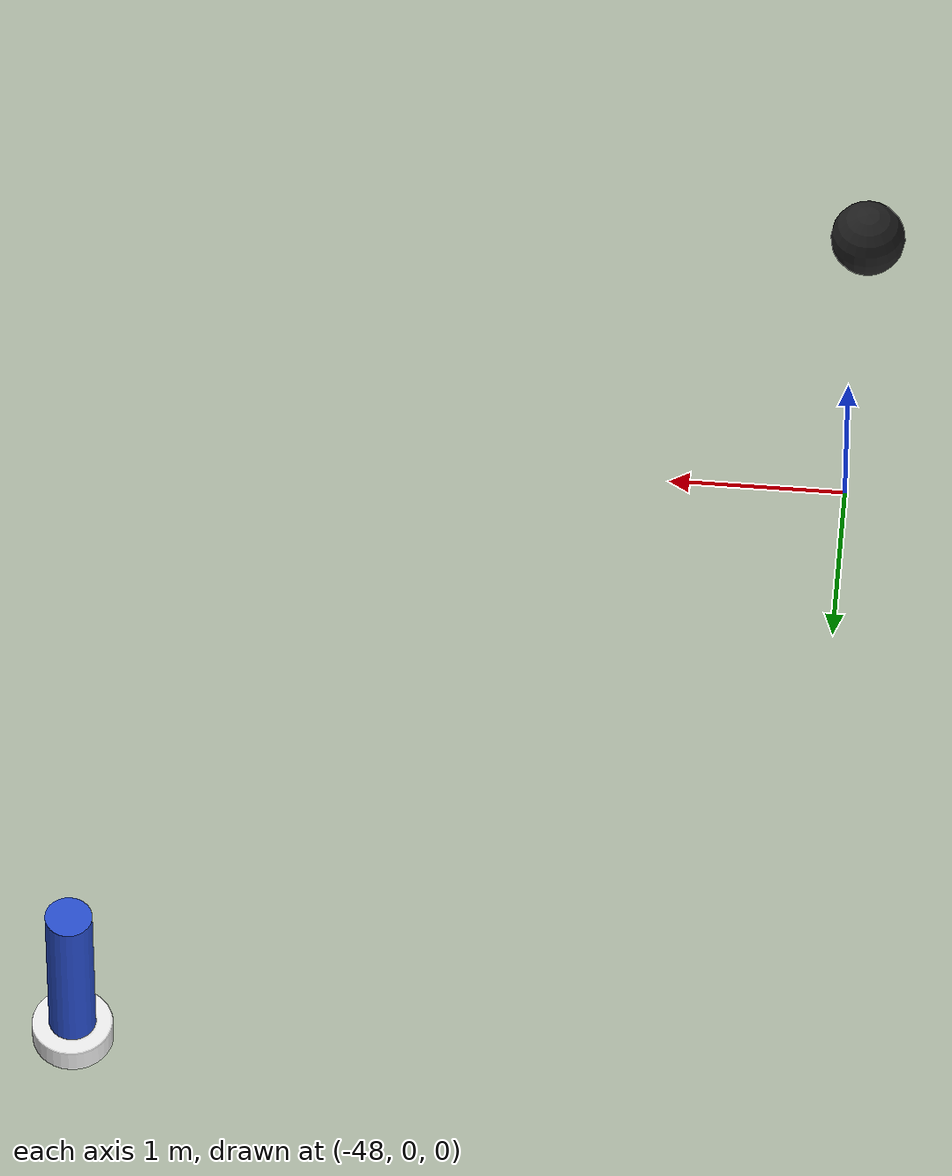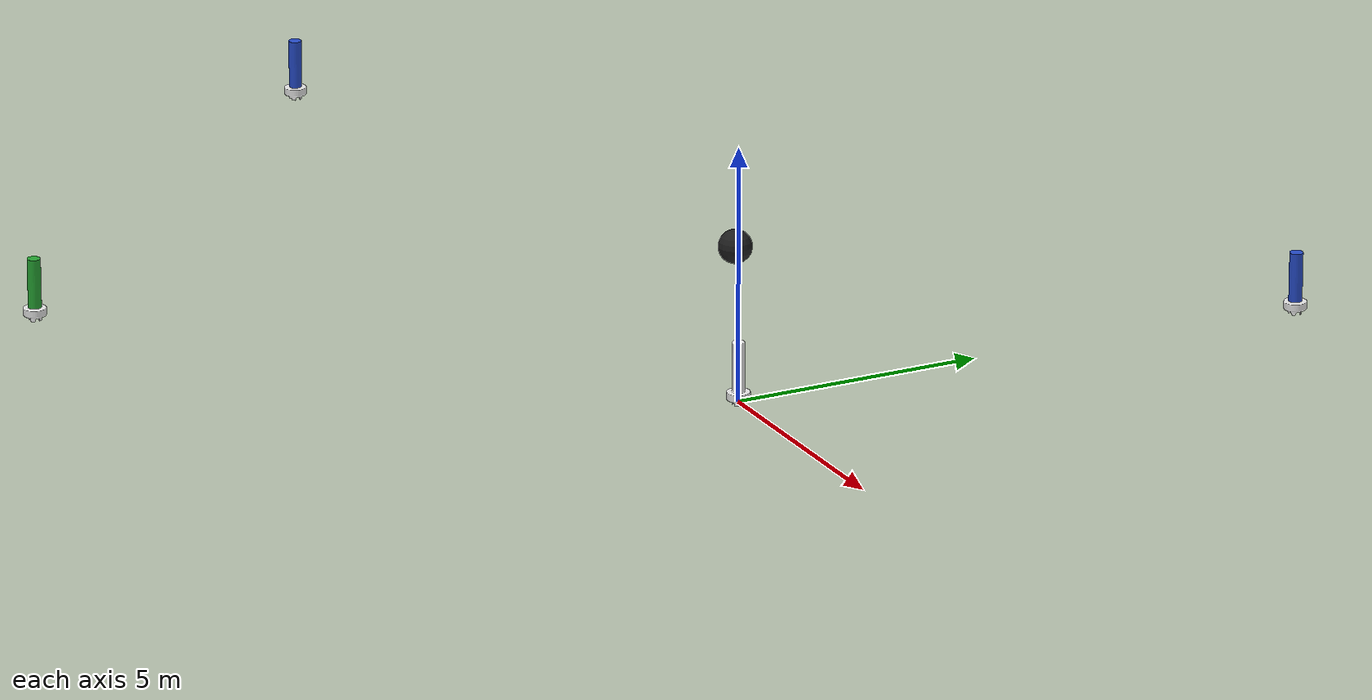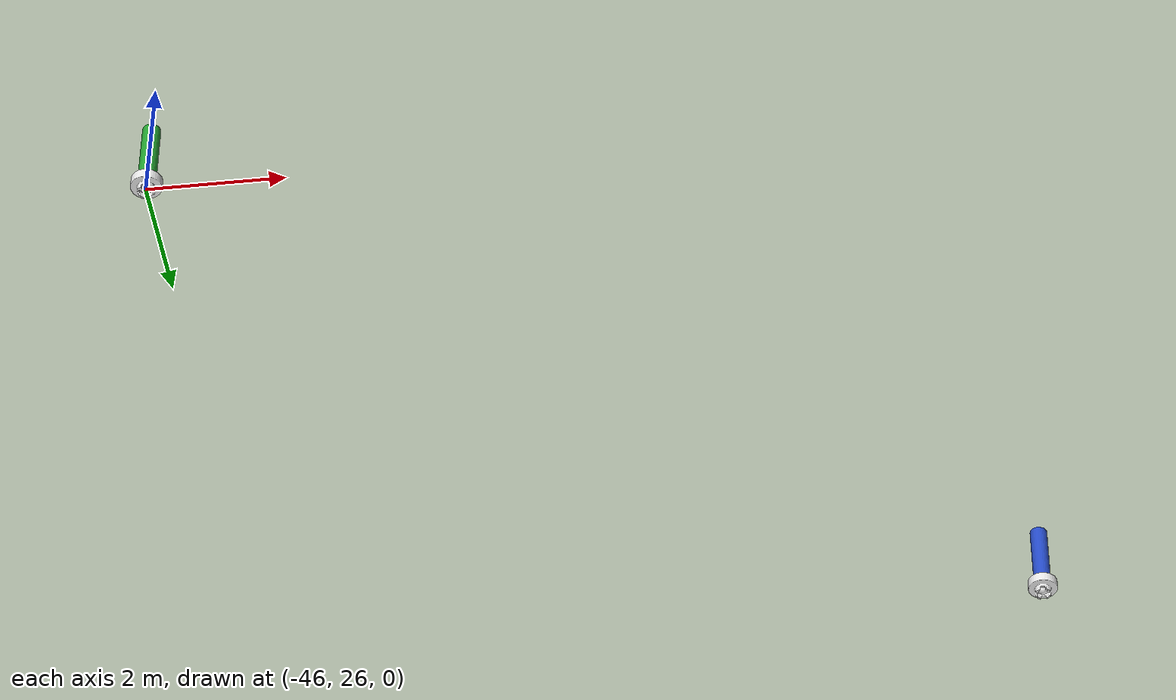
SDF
<?xml version="1.0"?>
<!-- Model for the VRX navigation course -->
<sdf version="1.6">
  <model name="vrx_navigation_course_1">

    <!-- Starboard_border -->
    <include>
      <name>red_bound_0</name>
      <pose>0 12 0 0 0 0</pose>
      <uri>model://blue_totem</uri>
    </include>

    <include>
      <name>red_bound_1</name>
      <pose>-20 0 0 0 0 0</pose>
      <uri>model://blue_totem</uri>
    </include>

    <include>
      <name>red_bound_2</name>
      <pose>-34 -6 0 0 0 0</pose>
      <uri>model://blue_totem</uri>
    </include>

    <include>
      <name>red_bound_3</name>
      <pose>-44 4 0 0 0 0</pose>
      <uri>model://blue_totem</uri>
    </include>

    <include>
      <name>red_bound_4</name>
      <pose>-34 36 0 0 0 0</pose>
      <uri>model://blue_totem</uri>
    </include>

    <include>
      <name>red_bound_5</name>
      <pose>-54 62 0 0 0 0</pose>
      <uri>model://blue_totem</uri>
    </include>

    <!-- Port_border -->
    <include>
      <name>green_bound_0</name>
      <pose>0 0 0.2 0 0 0</pose>
      <uri>model://surmark46104</uri>
    </include>

    <include>
      <name>green_bound_1</name>
      <pose>-10 -10 0.2 0 0 0</pose>
      <uri>model://green_totem</uri>
    </include>

    <include>
      <name>green_bound_2</name>
      <pose>-36 -18 0.2 0 0 0</pose>
      <uri>model://green_totem</uri>
    </include>

    <include>
      <name>green_bound_3</name>
      <pose>-58 4 0.2 0 0 0</pose>
      <uri>model://green_totem</uri>
    </include>

    <include>
      <name>green_bound_4</name>
      <pose>-46 26 0.2 0 0 0</pose>
      <uri>model://green_totem</uri>
    </include>

    <include>
      <name>green_bound_5</name>
      <pose>-54 50 0.2 0 0 0</pose>
      <uri>model://blue_totem</uri>
    </include>

    <!-- Obstacles -->
    <include>
      <name>obstacle_1</name>
      <pose>-8 4 -0.2 0 -0 0</pose>
      <uri>model://polyform_a5</uri>
    </include>

    <include>
      <name>obstacle_2</name>
      <pose>-48 -2 -0.2 0 -0 0</pose>
      <uri>model://polyform_a3</uri>
    </include>

  </model>

</sdf>

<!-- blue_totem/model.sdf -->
<sdf version="1.6">
  <model name="blue_totem">
    <link name="link">
      <inertial>
        <pose>0 0 -2 0 0 0</pose>
        <!-- Mass determined based on buoyancy geometry so object
             floats at mid-point of sphere -->
        <mass>25</mass>
        <!-- Mark only - based on cylinder -->
        <inertia>
          <ixx>1.0</ixx>
          <ixy>0</ixy>
          <ixz>0</ixz>
          <iyy>1.0</iyy>
          <iyz>0</iyz>
          <izz>0.1</izz>
        </inertia>
      </inertial>
      <collision name="collision_inner">
        <pose>0 0 0.367 0 0 0</pose>
        <geometry>
          <cylinder>
            <radius>0.13</radius>
            <length>1.25</length>
          </cylinder>
        </geometry>
      </collision>
      <collision name="collision_outer">
        <pose>0 0 -0.075 0 0 0</pose>
        <geometry>
          <cylinder>
            <radius>0.23</radius>
            <length>0.16</length>
          </cylinder>
        </geometry>
      </collision>
      <visual name="visual">
        <geometry>
          <mesh><uri>model://surmark46104/mesh/surmark46104.dae</uri></mesh>
        </geometry>
        <material>
          <script>
            <uri>file://media/materials/scripts/gazebo.material</uri>
            <name>Gazebo/White</name>
          </script>
        </material>
      </visual>
      <visual name="cover_visual">
        <pose>0 0 0.492 0 0 0</pose>
        <geometry>
          <cylinder>
            <radius>0.131</radius>
            <length>1</length>
          </cylinder>
        </geometry>
        <material>
          <script>
            <uri>file://media/materials/scripts/gazebo.material</uri>
            <name>Gazebo/Blue</name>
          </script>
        </material>
      </visual>
    </link>
    <plugin name="BuoyancyPlugin" filename="libbuoyancy_gazebo_plugin.so">
      <wave_model>ocean_waves</wave_model>
      <fluid_density>1000</fluid_density>
      <fluid_level>0.0</fluid_level>
      <linear_drag>25.0</linear_drag>
      <angular_drag>2.0</angular_drag>
      <buoyancy name="buoyancy_sphere">
        <link_name>link</link_name>
        <pose>0 0 -0.08 0 0 0</pose>
        <geometry>
          <sphere>
            <radius>0.23</radius>
          </sphere>
        </geometry>
      </buoyancy>
    </plugin>
  </model>
</sdf>

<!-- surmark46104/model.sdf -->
<sdf version="1.6">
  <model name="surmark46104">
    <link name="link">
      <inertial>
        <pose>0 0 -2 0 0 0</pose>
        <!-- Mass determined based on buoyancy geometry so object
             floats at mid-point of sphere -->
        <mass>25</mass>
        <!-- Mark only - based on cylinder -->
        <inertia>
          <ixx>1.0</ixx>
          <ixy>0</ixy>
          <ixz>0</ixz>
          <iyy>1.0</iyy>
          <iyz>0</iyz>
          <izz>0.1</izz>
        </inertia>
      </inertial>
      <collision name="collision_inner">
        <pose>0 0 0.367 0 0 0</pose>
        <geometry>
          <cylinder>
            <radius>0.13</radius>
            <length>1.25</length>
          </cylinder>
        </geometry>
      </collision>
      <collision name="collision_outer">
        <pose>0 0 -0.075 0 0 0</pose>
        <geometry>
          <cylinder>
            <radius>0.23</radius>
            <length>0.16</length>
          </cylinder>
        </geometry>
      </collision>
      <visual name="visual">
        <geometry>
	        <mesh><uri>model://surmark46104/mesh/surmark46104.dae</uri></mesh>
        </geometry>
        <material>
          <script>
            <uri>file://media/materials/scripts/gazebo.material</uri>
            <name>Gazebo/White</name>
          </script>
        </material>
      </visual>
    </link>
    <plugin name="BuoyancyPlugin" filename="libbuoyancy_gazebo_plugin.so">
      <wave_model>ocean_waves</wave_model>
      <fluid_density>1000</fluid_density>
      <fluid_level>0.0</fluid_level>
      <linear_drag>25.0</linear_drag>
      <angular_drag>2.0</angular_drag>
      <buoyancy name="buoyancy_sphere">
        <link_name>link</link_name>
        <pose>0 0 -0.08 0 0 0</pose>
        <geometry>
          <sphere>
            <radius>0.23</radius>
          </sphere>
        </geometry>
      </buoyancy>
    </plugin>
  </model>
</sdf>

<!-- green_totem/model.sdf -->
<sdf version="1.6">
  <model name="green_totem">
    <link name="link">
      <inertial>
        <pose>0 0 -2 0 0 0</pose>
        <!-- Mass determined based on buoyancy geometry so object
             floats at mid-point of sphere -->
        <mass>25</mass>
        <!-- Mark only - based on cylinder -->
        <inertia>
          <ixx>1.0</ixx>
          <ixy>0</ixy>
          <ixz>0</ixz>
          <iyy>1.0</iyy>
          <iyz>0</iyz>
          <izz>0.1</izz>
        </inertia>
      </inertial>
      <collision name="collision_inner">
        <pose>0 0 0.367 0 0 0</pose>
        <geometry>
          <cylinder>
            <radius>0.13</radius>
            <length>1.25</length>
          </cylinder>
        </geometry>
      </collision>
      <collision name="collision_outer">
        <pose>0 0 -0.075 0 0 0</pose>
        <geometry>
          <cylinder>
            <radius>0.23</radius>
            <length>0.16</length>
          </cylinder>
        </geometry>
      </collision>
      <visual name="visual">
        <geometry>
          <mesh><uri>model://surmark46104/mesh/surmark46104.dae</uri></mesh>
        </geometry>
        <material>
          <script>
            <uri>file://media/materials/scripts/gazebo.material</uri>
            <name>Gazebo/White</name>
          </script>
        </material>
      </visual>
      <visual name="cover_visual">
        <pose>0 0 0.492 0 0 0</pose>
        <geometry>
          <cylinder>
            <radius>0.131</radius>
            <length>1</length>
          </cylinder>
        </geometry>
        <material>
          <script>
            <uri>file://media/materials/scripts/gazebo.material</uri>
            <name>Gazebo/Green</name>
          </script>
        </material>
      </visual>
    </link>
    <plugin name="BuoyancyPlugin" filename="libbuoyancy_gazebo_plugin.so">
      <wave_model>ocean_waves</wave_model>
      <fluid_density>1000</fluid_density>
      <fluid_level>0.0</fluid_level>
      <linear_drag>25.0</linear_drag>
      <angular_drag>2.0</angular_drag>
      <buoyancy name="buoyancy_sphere">
        <link_name>link</link_name>
        <pose>0 0 -0.08 0 0 0</pose>
        <geometry>
          <sphere>
            <radius>0.23</radius>
          </sphere>
        </geometry>
      </buoyancy>
    </plugin>
  </model>
</sdf>

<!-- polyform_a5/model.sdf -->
<sdf version="1.6">
  <!-- Reference: https://www.polyformus.com/buoys/a-series -->
  <model name="polyform_a5">
    <static>false</static>
    <pose>0 0 0 0 0 0</pose>
    <link name="base_link">
      <inertial>
        <!-- Reference: https://www.sailrite.com/PDF/Polyform-Buoys-Fenders-Accessories.pdf, page 8 -->
        <mass>8.98</mass>
      </inertial>
      <visual name="visual">
        <geometry>
          <sphere><radius>0.343</radius></sphere>
        </geometry>
        <material>
          <script>
            <uri>file://media/materials/scripts/gazebo.material</uri>
            <name>Gazebo/Black</name>
          </script>
        </material>
      </visual>
      <collision name="collision">
        <geometry>
          <sphere><radius>0.343</radius></sphere>
        </geometry>
      </collision>
    </link>

    <plugin name="BuoyancyPlugin" filename="libbuoyancy_gazebo_plugin.so">
      <wave_model>ocean_waves</wave_model>
      <fluid_density>1000</fluid_density>
      <fluid_level>0.0</fluid_level>
      <linear_drag>20.0</linear_drag>
      <angular_drag>2.0</angular_drag>
      <buoyancy name="buoyancy">
        <link_name>base_link</link_name>
        <geometry>
          <sphere><radius>0.343</radius></sphere>
        </geometry>
      </buoyancy>
    </plugin>

  </model>
</sdf>

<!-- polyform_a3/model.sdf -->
<sdf version="1.6">
  <!-- Reference: https://www.polyformus.com/buoys/a-series -->
  <model name="polyform_a3">
    <static>false</static>
    <pose>0 0 0 0 0 0</pose>
    <link name="base_link">
      <inertial>
        <!-- Reference: https://www.sailrite.com/PDF/Polyform-Buoys-Fenders-Accessories.pdf, page 8 -->
        <mass>3.1</mass>
      </inertial>
      <visual name="visual">
        <geometry>
          <sphere><radius>0.216</radius></sphere>
        </geometry>
        <material>
          <script>
            <uri>file://media/materials/scripts/gazebo.material</uri>
            <name>Gazebo/Black</name>
          </script>
        </material>
      </visual>
      <collision name="collision">
        <geometry>
          <sphere><radius>0.216</radius></sphere>
        </geometry>
      </collision>
    </link>

    <plugin name="BuoyancyPlugin" filename="libbuoyancy_gazebo_plugin.so">
      <wave_model>ocean_waves</wave_model>
      <fluid_density>1000</fluid_density>
      <fluid_level>0.0</fluid_level>
      <linear_drag>20.0</linear_drag>
      <angular_drag>2.0</angular_drag>
      <buoyancy name="buoyancy">
        <link_name>base_link</link_name>
        <geometry>
          <sphere><radius>0.216</radius></sphere>
        </geometry>
      </buoyancy>
    </plugin>

  </model>
</sdf>
